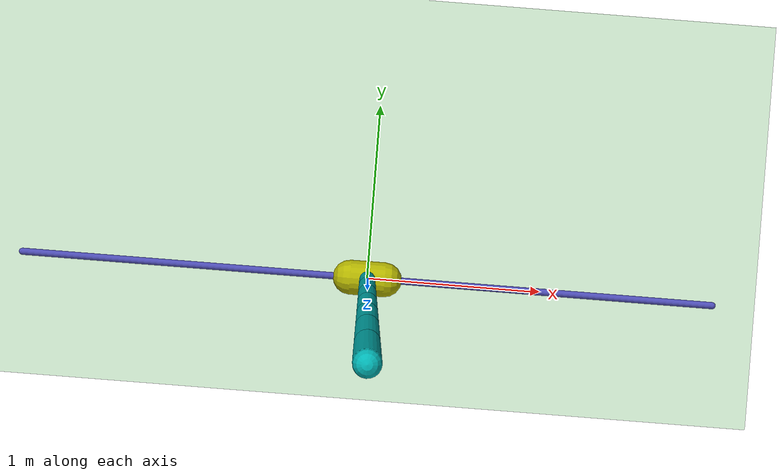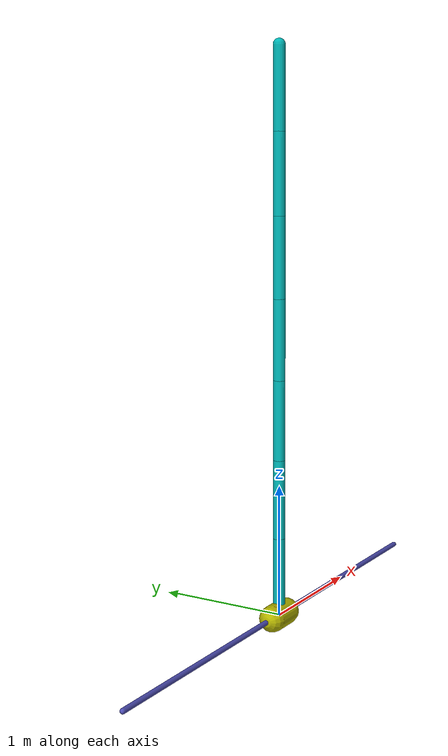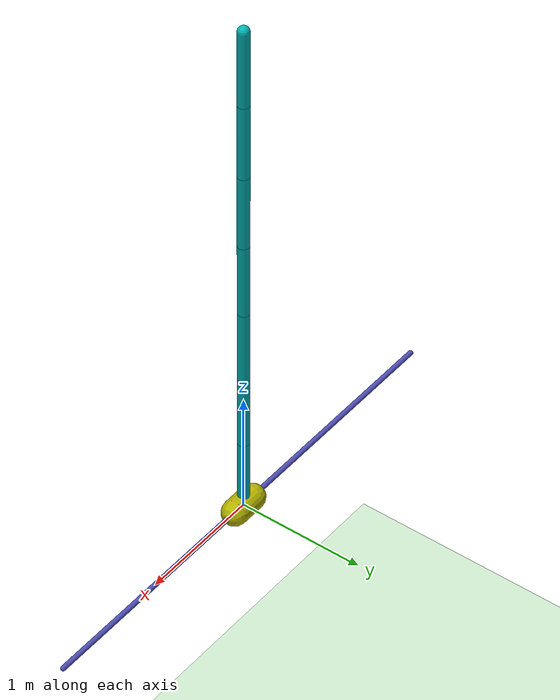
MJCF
<mujoco model="cartpole">
  <compiler coordinate="local" inertiafromgeom="true"/>
  <custom>
    <numeric data="2" name="frame_skip"/>
  </custom>
  <default>
    <joint damping="0.05"/>
    <geom contype="0" friction="1 0.1 0.1" rgba="0.7 0.7 0 1"/>
  </default>
  <option gravity="1e-5 0 -9.81" integrator="RK4" timestep="0.01"/>
  <size nstack="3000"/>

  <worldbody>
    <geom name="floor" pos="0 0 -3.0" rgba="0.8 0.9 0.8 1" size="40 40 40" type="plane"/>
    <geom name="rail" pos="0 0 0" quat="0.707 0 0.707 0" rgba="0.3 0.3 0.7 1" size="0.02 2" type="capsule"/>
    <body name="cart" pos="0 0 0">
      <joint axis="1 0 0" limited="true" margin="0.01" name="slider" pos="0 0 0" range="-2 2" type="slide"/>
      <geom name="cart" pos="0 0 0" fromto='-0.1 0 0 0.1 0 0' size="0.1" type="capsule"/>

      <body name="pole_0" pos="0 0 0.0">
        <joint axis="0 1 0" name="hinge_0" pos="0 0 0" type="hinge"/>
        <geom fromto="0 0 0 0 0 0.6" name="cpole_0" rgba="0 0.7 0.7 1" size="0.045" type="capsule"/>

        <body name="pole_1" pos="0 0 0.6">
          <joint axis="0 1 0" name="hinge_1" pos="0 0 0" type="hinge"/>
          <geom fromto="0 0 0 0 0 0.6" name="cpole_1" rgba="0 0.7 0.7 1" size="0.045" type="capsule"/>

          <body name="pole_2" pos="0 0 0.6">
            <joint axis="0 1 0" name="hinge_2" pos="0 0 0" type="hinge"/>
            <geom fromto="0 0 0 0 0 0.6" name="cpole_2" rgba="0 0.7 0.7 1" size="0.045" type="capsule"/>

            <body name="pole_3" pos="0 0 0.6">
              <joint axis="0 1 0" name="hinge_3" pos="0 0 0" type="hinge"/>
              <geom fromto="0 0 0 0 0 0.6" name="cpole_3" rgba="0 0.7 0.7 1" size="0.045" type="capsule"/>

              <body name="pole_4" pos="0 0 0.6">
                <joint axis="0 1 0" name="hinge_4" pos="0 0 0" type="hinge"/>
                <geom fromto="0 0 0 0 0 0.6" name="cpole_4" rgba="0 0.7 0.7 1" size="0.045" type="capsule"/>

                <body name="pole_5" pos="0 0 0.6">
                  <joint axis="0 1 0" name="hinge_5" pos="0 0 0" type="hinge"/>
                  <geom fromto="0 0 0 0 0 0.6" name="cpole_5" rgba="0 0.7 0.7 1" size="0.045" type="capsule"/>

                  <body name="pole_6" pos="0 0 0.6">
                    <joint axis="0 1 0" name="hinge_6" pos="0 0 0" type="hinge"/>
                    <geom fromto="0 0 0 0 0 0.6" name="cpole_6" rgba="0 0.7 0.7 1" size="0.045" type="capsule"/>

                    <site name="tip" pos="0 0 .6" size="0.01 0.01"/>
                  </body>
                </body>
              </body>
            </body>
          </body>
        </body>
      </body>

    </body>
  </worldbody>
  <actuator>
    <motor ctrllimited="true" ctrlrange="-1.0 1.0" joint="slider" gear="500"/>
    <motor ctrllimited="true" ctrlrange="-1.0 1.0" joint="hinge_0" gear="500"/>
    <motor ctrllimited="true" ctrlrange="-1.0 1.0" joint="hinge_1" gear="500"/>
    <motor ctrllimited="true" ctrlrange="-1.0 1.0" joint="hinge_2" gear="500"/>
    <motor ctrllimited="true" ctrlrange="-1.0 1.0" joint="hinge_3" gear="500"/>
    <motor ctrllimited="true" ctrlrange="-1.0 1.0" joint="hinge_4" gear="500"/>
  </actuator>

</mujoco>
